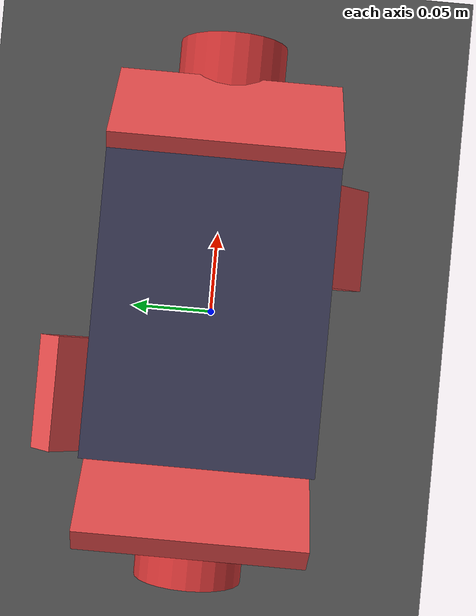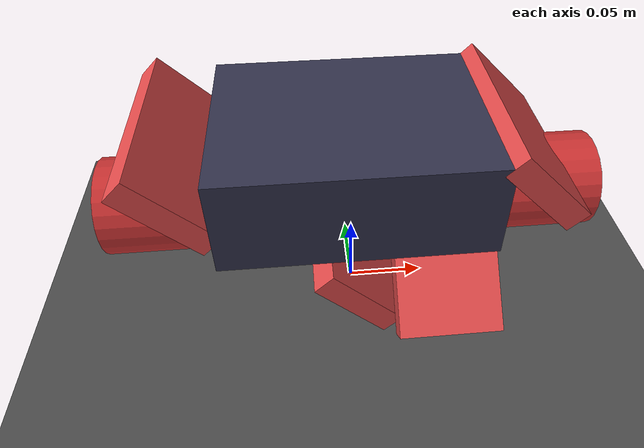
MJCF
<mujoco model="simple_test_screw">
  <compiler angle="degree" coordinate="local" autolimits="true"/>
  <option timestep="0.002" gravity="0 0 -9.81" integrator="implicitfast"/>

  <default>
    <geom rgba="0.8 0.8 0.8 1" condim="6" friction="2.0 0.01 0.002"/>
    <joint damping="0.05"/>
  </default>

  <worldbody>
    <!-- Simple high-friction ground -->
    <geom name="ground" type="plane" size="10 10 0.1" rgba="0.3 0.3 0.3 1"
          friction="4.0 0.01 0.002" condim="6"/>

    <!-- Single screw vehicle -->
    <body name="vehicle" pos="0 0 0.08">
      <!-- Sliding along X only (Y and rotation locked) -->
      <joint name="slide_x" type="slide" axis="1 0 0" limited="false" damping="0.2"/>
      <joint name="slide_z" type="slide" axis="0 0 1" limited="false" damping="0.5"/>

      <!-- Central body -->
      <geom name="chassis" type="box" size="0.08 0.06 0.03" pos="0 0 0.03"
            rgba="0.2 0.2 0.3 1" mass="0.5"/>

      <!-- Screw that rotates about X-axis -->
      <body name="screw" pos="0 0 0">
        <joint name="spin" type="hinge" axis="1 0 0" limited="false" damping="0.01"/>

        <!-- Core cylinder (no contact) -->
        <geom name="core" type="cylinder" fromto="-0.15 0 0  0.15 0 0" size="0.03"
              rgba="0.8 0.2 0.2 1" mass="0.3" contype="0" conaffinity="0"/>

        <!-- STEEP helix blades - key is to make them ANGLED and LONG -->
        <!-- These create a helical pattern with steeper pitch -->
        <!-- Blade 1 -->
        <geom type="box" size="0.03 0.06 0.008" pos="-0.10 0 0.04"
              quat="0.924 0 0.383 0" rgba="0.9 0.3 0.3 1"
              friction="5.0 0.01 0.002" condim="6" mass="0.02"/>

        <!-- Blade 2 (90 degrees around) -->
        <geom type="box" size="0.03 0.06 0.008" pos="-0.05 0.04 0"
              quat="0.924 0.383 0 0" rgba="0.9 0.3 0.3 1"
              friction="5.0 0.01 0.002" condim="6" mass="0.02"/>

        <!-- Blade 3 (180 degrees) -->
        <geom type="box" size="0.03 0.06 0.008" pos="0.00 0 -0.04"
              quat="0.924 0 0.383 0" rgba="0.9 0.3 0.3 1"
              friction="5.0 0.01 0.002" condim="6" mass="0.02"/>

        <!-- Blade 4 (270 degrees) -->
        <geom type="box" size="0.03 0.06 0.008" pos="0.05 -0.04 0"
              quat="0.924 0.383 0 0" rgba="0.9 0.3 0.3 1"
              friction="5.0 0.01 0.002" condim="6" mass="0.02"/>

        <!-- Blade 5 -->
        <geom type="box" size="0.03 0.06 0.008" pos="0.10 0 0.04"
              quat="0.924 0 0.383 0" rgba="0.9 0.3 0.3 1"
              friction="5.0 0.01 0.002" condim="6" mass="0.02"/>
      </body>
    </body>
  </worldbody>

  <actuator>
    <velocity name="motor" joint="spin" kv="20"/>
  </actuator>
</mujoco>
